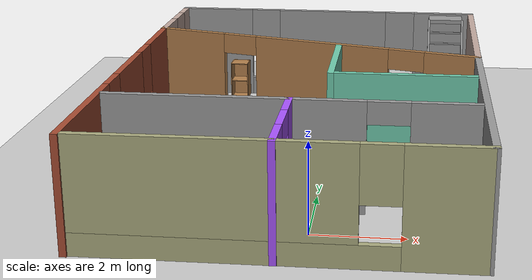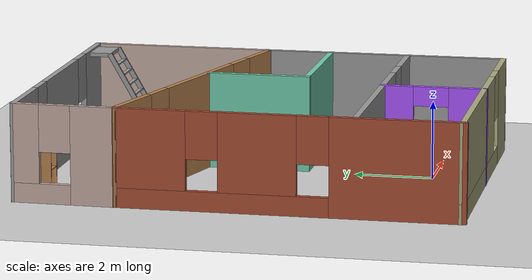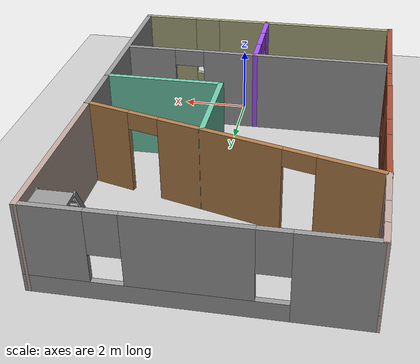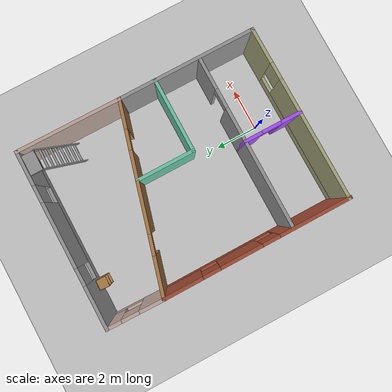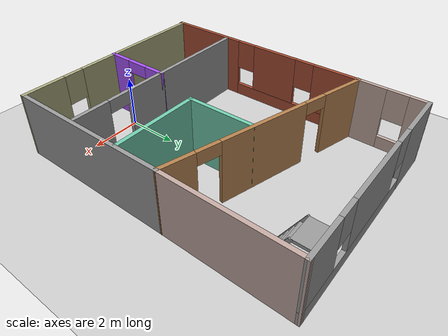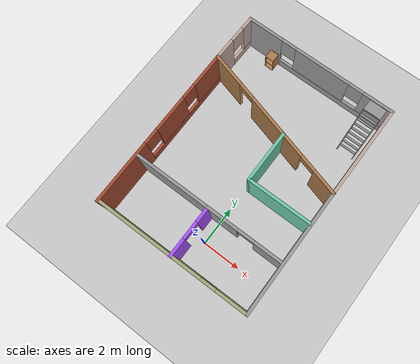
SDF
<sdf version="1.6">
 <world name="default">
  <model name="ground_plane">
   <static>1</static>
   <link name="link">
    <collision name="collision">
     <geometry><plane><normal>0 0 1</normal><size>100 100</size></plane></geometry>
     <surface>
      <contact><collide_bitmask>65535</collide_bitmask></contact>
      <friction><ode><mu>100</mu><mu2>50</mu2></ode></friction>
     </surface>
    </collision>
    <visual name="visual">
     <cast_shadows>0</cast_shadows>
     <geometry><plane><normal>0 0 1</normal><size>100 100</size></plane></geometry>
     <material>
      <script><uri>file://media/materials/scripts/gazebo.material</uri><name>Gazebo/Grey</name></script>
     </material>
    </visual>
   </link>
  </model>
  <model name="smaller_building">
   <pose>-0.52126 4.16067 0 0 -0 0</pose>
   <link name="Wall_0">
    <pose>-4.06474 -1.30067 0 0 -0 1.5708</pose>
    <visual name="Wall_0_Visual_0">
     <pose>-2.69299 0 1.25 0 -0 0</pose>
     <geometry><box><size>3.36402 0.15 2.5</size></box></geometry>
     <material>
      <script><uri>file://media/materials/scripts/gazebo.material</uri><name>Gazebo/Bricks</name></script>
      <ambient>1 1 1 1</ambient>
     </material>
     <meta><layer>0</layer></meta>
    </visual>
    <collision name="Wall_0_Collision_0">
     <geometry><box><size>3.36402 0.15 2.5</size></box></geometry>
     <pose>-2.69299 0 1.25 0 -0 0</pose>
    </collision>
    <visual name="Wall_0_Visual_1">
     <pose>1.68201 0 0.25 0 -0 0</pose>
     <geometry><box><size>5.38598 0.15 0.5</size></box></geometry>
     <material>
      <script><uri>file://media/materials/scripts/gazebo.material</uri><name>Gazebo/Bricks</name></script>
      <ambient>1 1 1 1</ambient>
     </material>
     <meta><layer>0</layer></meta>
    </visual>
    <collision name="Wall_0_Collision_1">
     <geometry><box><size>5.38598 0.15 0.5</size></box></geometry>
     <pose>1.68201 0 0.25 0 -0 0</pose>
    </collision>
    <visual name="Wall_0_Visual_2">
     <pose>0.764423 0 1.5 0 -0 0</pose>
     <geometry><box><size>1.9508 0.15 2</size></box></geometry>
     <material>
      <script><uri>file://media/materials/scripts/gazebo.material</uri><name>Gazebo/Bricks</name></script>
      <ambient>1 1 1 1</ambient>
     </material>
     <meta><layer>0</layer></meta>
    </visual>
    <collision name="Wall_0_Collision_2">
     <geometry><box><size>1.9508 0.15 2</size></box></geometry>
     <pose>0.764423 0 1.5 0 -0 0</pose>
    </collision>
    <visual name="Wall_0_Visual_3">
     <pose>3.45741 0 1.5 0 -0 0</pose>
     <geometry><box><size>1.83518 0.15 2</size></box></geometry>
     <material>
      <script><uri>file://media/materials/scripts/gazebo.material</uri><name>Gazebo/Bricks</name></script>
      <ambient>1 1 1 1</ambient>
     </material>
     <meta><layer>0</layer></meta>
    </visual>
    <collision name="Wall_0_Collision_3">
     <geometry><box><size>1.83518 0.15 2</size></box></geometry>
     <pose>3.45741 0 1.5 0 -0 0</pose>
    </collision>
    <visual name="Wall_0_Visual_4">
     <pose>-0.610977 0 1.9 0 -0 0</pose>
     <geometry><box><size>0.8 0.15 1.2</size></box></geometry>
     <material>
      <script><uri>file://media/materials/scripts/gazebo.material</uri><name>Gazebo/Bricks</name></script>
      <ambient>1 1 1 1</ambient>
     </material>
     <meta><layer>0</layer></meta>
    </visual>
    <collision name="Wall_0_Collision_4">
     <geometry><box><size>0.8 0.15 1.2</size></box></geometry>
     <pose>-0.610977 0 1.9 0 -0 0</pose>
    </collision>
    <visual name="Wall_0_Visual_5">
     <pose>2.13982 0 1.9 0 -0 0</pose>
     <geometry><box><size>0.8 0.15 1.2</size></box></geometry>
     <material>
      <script><uri>file://media/materials/scripts/gazebo.material</uri><name>Gazebo/Bricks</name></script>
      <ambient>1 1 1 1</ambient>
     </material>
     <meta><layer>0</layer></meta>
    </visual>
    <collision name="Wall_0_Collision_5">
     <geometry><box><size>0.8 0.15 1.2</size></box></geometry>
     <pose>2.13982 0 1.9 0 -0 0</pose>
    </collision>
   </link>
   <link name="Wall_1">
    <pose>-0.009001 1.94176 0 0 0 -0.265669</pose>
    <visual name="Wall_1_Visual_0">
     <pose>-3.35201 0 1.25 0 -0 0</pose>
     <geometry><box><size>1.85238 0.15 2.5</size></box></geometry>
     <material>
      <script><uri>file://media/materials/scripts/gazebo.material</uri><name>Gazebo/Wood</name></script>
      <ambient>1 1 1 1</ambient>
     </material>
     <meta><layer>0</layer></meta>
    </visual>
    <collision name="Wall_1_Collision_0">
     <geometry><box><size>1.85238 0.15 2.5</size></box></geometry>
     <pose>-3.35201 0 1.25 0 -0 0</pose>
    </collision>
    <visual name="Wall_1_Visual_1">
     <pose>0.239557 0 1.25 0 -0 0</pose>
     <geometry><box><size>3.53076 0.15 2.5</size></box></geometry>
     <material>
      <script><uri>file://media/materials/scripts/gazebo.material</uri><name>Gazebo/Wood</name></script>
      <ambient>1 1 1 1</ambient>
     </material>
     <meta><layer>0</layer></meta>
    </visual>
    <collision name="Wall_1_Collision_1">
     <geometry><box><size>3.53076 0.15 2.5</size></box></geometry>
     <pose>0.239557 0 1.25 0 -0 0</pose>
    </collision>
    <visual name="Wall_1_Visual_2">
     <pose>3.59157 0 1.25 0 -0 0</pose>
     <geometry><box><size>1.37326 0.15 2.5</size></box></geometry>
     <material>
      <script><uri>file://media/materials/scripts/gazebo.material</uri><name>Gazebo/Wood</name></script>
      <ambient>1 1 1 1</ambient>
     </material>
     <meta><layer>0</layer></meta>
    </visual>
    <collision name="Wall_1_Collision_2">
     <geometry><box><size>1.37326 0.15 2.5</size></box></geometry>
     <pose>3.59157 0 1.25 0 -0 0</pose>
    </collision>
    <visual name="Wall_1_Visual_3">
     <pose>-1.97582 0 2.25 0 -0 0</pose>
     <geometry><box><size>0.9 0.15 0.5</size></box></geometry>
     <material>
      <script><uri>file://media/materials/scripts/gazebo.material</uri><name>Gazebo/Wood</name></script>
      <ambient>1 1 1 1</ambient>
     </material>
     <meta><layer>0</layer></meta>
    </visual>
    <collision name="Wall_1_Collision_3">
     <geometry><box><size>0.9 0.15 0.5</size></box></geometry>
     <pose>-1.97582 0 2.25 0 -0 0</pose>
    </collision>
    <visual name="Wall_1_Visual_4">
     <pose>2.45494 0 2.25 0 -0 0</pose>
     <geometry><box><size>0.9 0.15 0.5</size></box></geometry>
     <material>
      <script><uri>file://media/materials/scripts/gazebo.material</uri><name>Gazebo/Wood</name></script>
      <ambient>1 1 1 1</ambient>
     </material>
     <meta><layer>0</layer></meta>
    </visual>
    <collision name="Wall_1_Collision_4">
     <geometry><box><size>0.9 0.15 0.5</size></box></geometry>
     <pose>2.45494 0 2.25 0 -0 0</pose>
    </collision>
   </link>
   <link name="Wall_10">
    <pose>0.031259 5.59933 0 0 -0 0</pose>
    <visual name="Wall_10_Visual_0">
     <pose>-3.12756 0 1.25 0 -0 0</pose>
     <geometry><box><size>1.99488 0.15 2.5</size></box></geometry>
     <material>
      <script><uri>file://media/materials/scripts/gazebo.material</uri><name>Gazebo/Grey</name></script>
      <ambient>0 0 0 1</ambient>
     </material>
     <meta><layer>0</layer></meta>
    </visual>
    <collision name="Wall_10_Collision_0">
     <geometry><box><size>1.99488 0.15 2.5</size></box></geometry>
     <pose>-3.12756 0 1.25 0 -0 0</pose>
    </collision>
    <visual name="Wall_10_Visual_1">
     <pose>0.997439 0 0.25 0 -0 0</pose>
     <geometry><box><size>6.25512 0.15 0.5</size></box></geometry>
     <material>
      <script><uri>file://media/materials/scripts/gazebo.material</uri><name>Gazebo/Grey</name></script>
      <ambient>0 0 0 1</ambient>
     </material>
     <meta><layer>0</layer></meta>
    </visual>
    <collision name="Wall_10_Collision_1">
     <geometry><box><size>6.25512 0.15 0.5</size></box></geometry>
     <pose>0.997439 0 0.25 0 -0 0</pose>
    </collision>
    <visual name="Wall_10_Visual_2">
     <pose>0.174278 0 1.5 0 -0 0</pose>
     <geometry><box><size>3.0088 0.15 2</size></box></geometry>
     <material>
      <script><uri>file://media/materials/scripts/gazebo.material</uri><name>Gazebo/Grey</name></script>
      <ambient>0 0 0 1</ambient>
     </material>
     <meta><layer>0</layer></meta>
    </visual>
    <collision name="Wall_10_Collision_2">
     <geometry><box><size>3.0088 0.15 2</size></box></geometry>
     <pose>0.174278 0 1.5 0 -0 0</pose>
    </collision>
    <visual name="Wall_10_Visual_3">
     <pose>3.30184 0 1.5 0 -0 0</pose>
     <geometry><box><size>1.64632 0.15 2</size></box></geometry>
     <material>
      <script><uri>file://media/materials/scripts/gazebo.material</uri><name>Gazebo/Grey</name></script>
      <ambient>0 0 0 1</ambient>
     </material>
     <meta><layer>0</layer></meta>
    </visual>
    <collision name="Wall_10_Collision_3">
     <geometry><box><size>1.64632 0.15 2</size></box></geometry>
     <pose>3.30184 0 1.5 0 -0 0</pose>
    </collision>
    <visual name="Wall_10_Visual_4">
     <pose>-1.73012 0 1.9 0 -0 0</pose>
     <geometry><box><size>0.8 0.15 1.2</size></box></geometry>
     <material>
      <script><uri>file://media/materials/scripts/gazebo.material</uri><name>Gazebo/Grey</name></script>
      <ambient>0 0 0 1</ambient>
     </material>
     <meta><layer>0</layer></meta>
    </visual>
    <collision name="Wall_10_Collision_4">
     <geometry><box><size>0.8 0.15 1.2</size></box></geometry>
     <pose>-1.73012 0 1.9 0 -0 0</pose>
    </collision>
    <visual name="Wall_10_Visual_5">
     <pose>2.07868 0 1.9 0 -0 0</pose>
     <geometry><box><size>0.8 0.15 1.2</size></box></geometry>
     <material>
      <script><uri>file://media/materials/scripts/gazebo.material</uri><name>Gazebo/Grey</name></script>
      <ambient>0 0 0 1</ambient>
     </material>
     <meta><layer>0</layer></meta>
    </visual>
    <collision name="Wall_10_Collision_5">
     <geometry><box><size>0.8 0.15 1.2</size></box></geometry>
     <pose>2.07868 0 1.9 0 -0 0</pose>
    </collision>
   </link>
   <link name="Wall_11">
    <collision name="Wall_11_Collision">
     <geometry><box><size>4.91126 0.15 2.5</size></box></geometry>
     <pose>0 0 1.25 0 -0 0</pose>
    </collision>
    <visual name="Wall_11_Visual">
     <pose>0 0 1.25 0 -0 0</pose>
     <geometry><box><size>4.91126 0.15 2.5</size></box></geometry>
     <material>
      <script><uri>file://media/materials/scripts/gazebo.material</uri><name>Gazebo/Grey</name></script>
      <ambient>0.760784 0.662745 0.627451 1</ambient>
     </material>
     <meta><layer>0</layer></meta>
    </visual>
    <pose>4.064 3.21876 0 0 0 -1.57805</pose>
   </link>
   <link name="Wall_13">
    <collision name="Wall_13_Collision">
     <geometry><box><size>2.75 0.15 2.5</size></box></geometry>
     <pose>0 0 1.25 0 -0 0</pose>
    </collision>
    <visual name="Wall_13_Visual">
     <pose>0 0 1.25 0 -0 0</pose>
     <geometry><box><size>2.75 0.15 2.5</size></box></geometry>
     <material>
      <script><uri>file://media/materials/scripts/gazebo.material</uri><name>Gazebo/Grey</name></script>
      <ambient>0.435294 0.796078 0.67451 1</ambient>
     </material>
     <meta><layer>0</layer></meta>
    </visual>
    <pose>0.681637 0.438455 0 0 0 -1.5708</pose>
   </link>
   <link name="Wall_14">
    <collision name="Wall_14_Collision">
     <geometry><box><size>3.5 0.15 2.5</size></box></geometry>
     <pose>0 0 1.25 0 -0 0</pose>
    </collision>
    <visual name="Wall_14_Visual">
     <pose>0 0 1.25 0 -0 0</pose>
     <geometry><box><size>3.5 0.15 2.5</size></box></geometry>
     <material>
      <script><uri>file://media/materials/scripts/gazebo.material</uri><name>Gazebo/Grey</name></script>
      <ambient>0.435294 0.796078 0.67451 1</ambient>
     </material>
     <meta><layer>0</layer></meta>
    </visual>
    <pose>2.35664 -0.861545 0 0 -0 0</pose>
   </link>
   <link name="Wall_2">
    <collision name="Wall_2_Collision">
     <geometry><box><size>6.5 0.15 2.5</size></box></geometry>
     <pose>0 0 1.25 0 -0 0</pose>
    </collision>
    <visual name="Wall_2_Visual">
     <pose>0 0 1.25 0 -0 0</pose>
     <geometry><box><size>6.5 0.15 2.5</size></box></geometry>
     <material>
      <script><uri>file://media/materials/scripts/gazebo.material</uri><name>Gazebo/Grey</name></script>
      <ambient>1 1 1 1</ambient>
     </material>
     <meta><layer>0</layer></meta>
    </visual>
    <pose>4.04674 -2.33681 0 0 0 -1.5708</pose>
   </link>
   <link name="Wall_3">
    <pose>-0.009001 -5.53324 0 0 0 -3.13631</pose>
    <visual name="Wall_3_Visual_0">
     <pose>-3.27202 0 1.25 0 -0 0</pose>
     <geometry><box><size>1.71756 0.15 2.5</size></box></geometry>
     <material>
      <script><uri>file://media/materials/scripts/gazebo.material</uri><name>Gazebo/Grey</name></script>
      <ambient>0.666667 0.666667 0.498039 1</ambient>
     </material>
     <meta><layer>0</layer></meta>
    </visual>
    <collision name="Wall_3_Collision_0">
     <geometry><box><size>1.71756 0.15 2.5</size></box></geometry>
     <pose>-3.27202 0 1.25 0 -0 0</pose>
    </collision>
    <visual name="Wall_3_Visual_1">
     <pose>0.858779 0 0.25 0 -0 0</pose>
     <geometry><box><size>6.54404 0.15 0.5</size></box></geometry>
     <material>
      <script><uri>file://media/materials/scripts/gazebo.material</uri><name>Gazebo/Grey</name></script>
      <ambient>0.666667 0.666667 0.498039 1</ambient>
     </material>
     <meta><layer>0</layer></meta>
    </visual>
    <collision name="Wall_3_Collision_1">
     <geometry><box><size>6.54404 0.15 0.5</size></box></geometry>
     <pose>0.858779 0 0.25 0 -0 0</pose>
    </collision>
    <visual name="Wall_3_Visual_2">
     <pose>1.25878 0 1.5 0 -0 0</pose>
     <geometry><box><size>5.74404 0.15 2</size></box></geometry>
     <material>
      <script><uri>file://media/materials/scripts/gazebo.material</uri><name>Gazebo/Grey</name></script>
      <ambient>0.666667 0.666667 0.498039 1</ambient>
     </material>
     <meta><layer>0</layer></meta>
    </visual>
    <collision name="Wall_3_Collision_2">
     <geometry><box><size>5.74404 0.15 2</size></box></geometry>
     <pose>1.25878 0 1.5 0 -0 0</pose>
    </collision>
    <visual name="Wall_3_Visual_3">
     <pose>-2.01324 0 1.9 0 -0 0</pose>
     <geometry><box><size>0.8 0.15 1.2</size></box></geometry>
     <material>
      <script><uri>file://media/materials/scripts/gazebo.material</uri><name>Gazebo/Grey</name></script>
      <ambient>0.666667 0.666667 0.498039 1</ambient>
     </material>
     <meta><layer>0</layer></meta>
    </visual>
    <collision name="Wall_3_Collision_3">
     <geometry><box><size>0.8 0.15 1.2</size></box></geometry>
     <pose>-2.01324 0 1.9 0 -0 0</pose>
    </collision>
   </link>
   <link name="Wall_5">
    <pose>-0.02138 -2.94564 0 0 -0 0</pose>
    <visual name="Wall_5_Visual_0">
     <pose>-1.18579 0 1.25 0 -0 0</pose>
     <geometry><box><size>5.62842 0.15 2.5</size></box></geometry>
     <material>
      <script><uri>file://media/materials/scripts/gazebo.material</uri><name>Gazebo/Grey</name></script>
      <ambient>1 1 1 1</ambient>
     </material>
     <meta><layer>0</layer></meta>
    </visual>
    <collision name="Wall_5_Collision_0">
     <geometry><box><size>5.62842 0.15 2.5</size></box></geometry>
     <pose>-1.18579 0 1.25 0 -0 0</pose>
    </collision>
    <visual name="Wall_5_Visual_1">
     <pose>3.26421 0 1.25 0 -0 0</pose>
     <geometry><box><size>1.47158 0.15 2.5</size></box></geometry>
     <material>
      <script><uri>file://media/materials/scripts/gazebo.material</uri><name>Gazebo/Grey</name></script>
      <ambient>1 1 1 1</ambient>
     </material>
     <meta><layer>0</layer></meta>
    </visual>
    <collision name="Wall_5_Collision_1">
     <geometry><box><size>1.47158 0.15 2.5</size></box></geometry>
     <pose>3.26421 0 1.25 0 -0 0</pose>
    </collision>
    <visual name="Wall_5_Visual_2">
     <pose>2.07842 0 2.25 0 -0 0</pose>
     <geometry><box><size>0.9 0.15 0.5</size></box></geometry>
     <material>
      <script><uri>file://media/materials/scripts/gazebo.material</uri><name>Gazebo/Grey</name></script>
      <ambient>1 1 1 1</ambient>
     </material>
     <meta><layer>0</layer></meta>
    </visual>
    <collision name="Wall_5_Collision_2">
     <geometry><box><size>0.9 0.15 0.5</size></box></geometry>
     <pose>2.07842 0 2.25 0 -0 0</pose>
    </collision>
   </link>
   <link name="Wall_7">
    <pose>-0.00412 -4.24564 0 0 0 -1.5708</pose>
    <visual name="Wall_7_Visual_0">
     <pose>-0.942147 0 1.25 0 -0 0</pose>
     <geometry><box><size>0.865707 0.15 2.5</size></box></geometry>
     <material>
      <script><uri>file://media/materials/scripts/gazebo.material</uri><name>Gazebo/Grey</name></script>
      <ambient>0.666667 0.333333 1 1</ambient>
     </material>
     <meta><layer>0</layer></meta>
    </visual>
    <collision name="Wall_7_Collision_0">
     <geometry><box><size>0.865707 0.15 2.5</size></box></geometry>
     <pose>-0.942147 0 1.25 0 -0 0</pose>
    </collision>
    <visual name="Wall_7_Visual_1">
     <pose>0.882853 0 1.25 0 -0 0</pose>
     <geometry><box><size>0.984293 0.15 2.5</size></box></geometry>
     <material>
      <script><uri>file://media/materials/scripts/gazebo.material</uri><name>Gazebo/Grey</name></script>
      <ambient>0.666667 0.333333 1 1</ambient>
     </material>
     <meta><layer>0</layer></meta>
    </visual>
    <collision name="Wall_7_Collision_1">
     <geometry><box><size>0.984293 0.15 2.5</size></box></geometry>
     <pose>0.882853 0 1.25 0 -0 0</pose>
    </collision>
    <visual name="Wall_7_Visual_2">
     <pose>-0.059293 0 2.25 0 -0 0</pose>
     <geometry><box><size>0.9 0.15 0.5</size></box></geometry>
     <material>
      <script><uri>file://media/materials/scripts/gazebo.material</uri><name>Gazebo/Grey</name></script>
      <ambient>0.666667 0.333333 1 1</ambient>
     </material>
     <meta><layer>0</layer></meta>
    </visual>
    <collision name="Wall_7_Collision_2">
     <geometry><box><size>0.9 0.15 0.5</size></box></geometry>
     <pose>-0.059293 0 2.25 0 -0 0</pose>
    </collision>
   </link>
   <link name="Wall_9">
    <pose>-4.04174 4.32233 0 0 -0 1.55279</pose>
    <visual name="Wall_9_Visual_0">
     <pose>-0.766072 0 1.25 0 -0 0</pose>
     <geometry><box><size>1.17227 0.15 2.5</size></box></geometry>
     <material>
      <script><uri>file://media/materials/scripts/gazebo.material</uri><name>Gazebo/Grey</name></script>
      <ambient>0.760784 0.662745 0.627451 1</ambient>
     </material>
     <meta><layer>0</layer></meta>
    </visual>
    <collision name="Wall_9_Collision_0">
     <geometry><box><size>1.17227 0.15 2.5</size></box></geometry>
     <pose>-0.766072 0 1.25 0 -0 0</pose>
    </collision>
    <visual name="Wall_9_Visual_1">
     <pose>0.586135 0 0.25 0 -0 0</pose>
     <geometry><box><size>1.53214 0.15 0.5</size></box></geometry>
     <material>
      <script><uri>file://media/materials/scripts/gazebo.material</uri><name>Gazebo/Grey</name></script>
      <ambient>0.760784 0.662745 0.627451 1</ambient>
     </material>
     <meta><layer>0</layer></meta>
    </visual>
    <collision name="Wall_9_Collision_1">
     <geometry><box><size>1.53214 0.15 0.5</size></box></geometry>
     <pose>0.586135 0 0.25 0 -0 0</pose>
    </collision>
    <visual name="Wall_9_Visual_2">
     <pose>0.986135 0 1.5 0 -0 0</pose>
     <geometry><box><size>0.732144 0.15 2</size></box></geometry>
     <material>
      <script><uri>file://media/materials/scripts/gazebo.material</uri><name>Gazebo/Grey</name></script>
      <ambient>0.760784 0.662745 0.627451 1</ambient>
     </material>
     <meta><layer>0</layer></meta>
    </visual>
    <collision name="Wall_9_Collision_2">
     <geometry><box><size>0.732144 0.15 2</size></box></geometry>
     <pose>0.986135 0 1.5 0 -0 0</pose>
    </collision>
    <visual name="Wall_9_Visual_3">
     <pose>0.220063 0 1.9 0 -0 0</pose>
     <geometry><box><size>0.8 0.15 1.2</size></box></geometry>
     <material>
      <script><uri>file://media/materials/scripts/gazebo.material</uri><name>Gazebo/Grey</name></script>
      <ambient>0.760784 0.662745 0.627451 1</ambient>
     </material>
     <meta><layer>0</layer></meta>
    </visual>
    <collision name="Wall_9_Collision_3">
     <geometry><box><size>0.8 0.15 1.2</size></box></geometry>
     <pose>0.220063 0 1.9 0 -0 0</pose>
    </collision>
   </link>
   <static>1</static>
  </model>
  <model name="cabinet">
   <static>1</static>
   <link name="cabinet_bottom_plate">
    <inertial>
     <pose>0 0 -1 0 -0 0</pose>
     <inertia><ixx>2.05</ixx><ixy>0</ixy><ixz>0</ixz><iyy>2.05</iyy><iyz>0</iyz><izz>2.05</izz></inertia>
     <mass>25</mass>
    </inertial>
    <collision name="cabinet_bottom_plate_geom">
     <pose>0 0 0.01 0 -0 0</pose>
     <geometry><box><size>0.45 0.45 0.02</size></box></geometry>
    </collision>
    <visual name="cabinet_bottom_plate_geom_visual">
     <pose>0 0 0.01 0 -0 0</pose>
     <geometry><box><size>0.45 0.45 0.02</size></box></geometry>
     <material>
      <script><uri>file://media/materials/scripts/gazebo.material</uri><name>Gazebo/Wood</name></script>
     </material>
    </visual>
    <collision name="cabinet_bottom_plate_geom_cabinet_back_plate">
     <pose>0.235 0 0.51 0 -0 0</pose>
     <geometry><box><size>0.02 0.45 1.02</size></box></geometry>
    </collision>
    <visual name="cabinet_bottom_plate_geom_cabinet_back_plate_visual">
     <pose>0.235 0 0.51 0 -0 0</pose>
     <geometry><box><size>0.02 0.45 1.02</size></box></geometry>
     <material>
      <script><uri>file://media/materials/scripts/gazebo.material</uri><name>Gazebo/Wood</name></script>
     </material>
    </visual>
    <collision name="cabinet_bottom_plate_geom_cabinet_left_plate">
     <pose>0 0.235 0.51 0 -0 0</pose>
     <geometry><box><size>0.45 0.02 1.02</size></box></geometry>
    </collision>
    <visual name="cabinet_bottom_plate_geom_cabinet_left_plate_visual">
     <pose>0 0.235 0.51 0 -0 0</pose>
     <geometry><box><size>0.45 0.02 1.02</size></box></geometry>
     <material>
      <script><uri>file://media/materials/scripts/gazebo.material</uri><name>Gazebo/Wood</name></script>
     </material>
    </visual>
    <collision name="cabinet_bottom_plate_geom_cabinet_middle_plate">
     <pose>0 0 0.51 0 -0 0</pose>
     <geometry><box><size>0.45 0.45 0.02</size></box></geometry>
    </collision>
    <visual name="cabinet_bottom_plate_geom_cabinet_middle_plate_visual">
     <pose>0 0 0.51 0 -0 0</pose>
     <geometry><box><size>0.45 0.45 0.02</size></box></geometry>
     <material>
      <script><uri>file://media/materials/scripts/gazebo.material</uri><name>Gazebo/Wood</name></script>
     </material>
    </visual>
    <collision name="cabinet_bottom_plate_geom_cabinet_right_plate">
     <pose>0 -0.235 0.51 0 -0 0</pose>
     <geometry><box><size>0.45 0.02 1.02</size></box></geometry>
    </collision>
    <visual name="cabinet_bottom_plate_geom_cabinet_right_plate_visual">
     <pose>0 -0.235 0.51 0 -0 0</pose>
     <geometry><box><size>0.45 0.02 1.02</size></box></geometry>
     <material>
      <script><uri>file://media/materials/scripts/gazebo.material</uri><name>Gazebo/Wood</name></script>
     </material>
    </visual>
    <collision name="cabinet_bottom_plate_geom_cabinet_top_plate">
     <pose>0 0 1.01 0 -0 0</pose>
     <geometry><box><size>0.45 0.45 0.02</size></box></geometry>
    </collision>
    <visual name="cabinet_bottom_plate_geom_cabinet_top_plate_visual">
     <pose>0 0 1.01 0 -0 0</pose>
     <geometry><box><size>0.45 0.45 0.02</size></box></geometry>
     <material>
      <script><uri>file://media/materials/scripts/gazebo.material</uri><name>Gazebo/Wood</name></script>
     </material>
    </visual>
   </link>
   <pose>-2.94345 9.42857 0 0 -0 1.55102</pose>
  </model>
  <model name="ladder_60deg_0rails">
   <static>1</static>
   <link name="step0">
    <pose>0 0.15396 0.266667 0 -0 0</pose>
    <inertial>
     <mass>9.75482</mass>
     <inertia>
      <ixx>0.00957124</ixx>
      <iyy>0.65963</iyy>
      <izz>0.666842</izz>
      <ixy>0</ixy>
      <ixz>0</ixz>
      <iyz>0</iyz>
     </inertia>
    </inertial>
    <collision name="collision"><geometry><box><size>0.9 0.1016 0.0381</size></box></geometry></collision>
    <visual name="visual">
     <geometry><box><size>0.9 0.1016 0.0381</size></box></geometry>
     <material>
      <script><uri>file://media/materials/scripts/gazebo.material</uri><name>Gazebo/Grey</name></script>
     </material>
    </visual>
   </link>
   <link name="step1">
    <pose>0 0.30792 0.533333 0 -0 0</pose>
    <inertial>
     <mass>9.75482</mass>
     <inertia>
      <ixx>0.00957124</ixx>
      <iyy>0.65963</iyy>
      <izz>0.666842</izz>
      <ixy>0</ixy>
      <ixz>0</ixz>
      <iyz>0</iyz>
     </inertia>
    </inertial>
    <collision name="collision"><geometry><box><size>0.9 0.1016 0.0381</size></box></geometry></collision>
    <visual name="visual">
     <geometry><box><size>0.9 0.1016 0.0381</size></box></geometry>
     <material>
      <script><uri>file://media/materials/scripts/gazebo.material</uri><name>Gazebo/Grey</name></script>
     </material>
    </visual>
   </link>
   <link name="step2">
    <pose>0 0.46188 0.8 0 -0 0</pose>
    <inertial>
     <mass>9.75482</mass>
     <inertia>
      <ixx>0.00957124</ixx>
      <iyy>0.65963</iyy>
      <izz>0.666842</izz>
      <ixy>0</ixy>
      <ixz>0</ixz>
      <iyz>0</iyz>
     </inertia>
    </inertial>
    <collision name="collision"><geometry><box><size>0.9 0.1016 0.0381</size></box></geometry></collision>
    <visual name="visual">
     <geometry><box><size>0.9 0.1016 0.0381</size></box></geometry>
     <material>
      <script><uri>file://media/materials/scripts/gazebo.material</uri><name>Gazebo/Grey</name></script>
     </material>
    </visual>
   </link>
   <link name="step3">
    <pose>0 0.61584 1.06667 0 -0 0</pose>
    <inertial>
     <mass>9.75482</mass>
     <inertia>
      <ixx>0.00957124</ixx>
      <iyy>0.65963</iyy>
      <izz>0.666842</izz>
      <ixy>0</ixy>
      <ixz>0</ixz>
      <iyz>0</iyz>
     </inertia>
    </inertial>
    <collision name="collision"><geometry><box><size>0.9 0.1016 0.0381</size></box></geometry></collision>
    <visual name="visual">
     <geometry><box><size>0.9 0.1016 0.0381</size></box></geometry>
     <material>
      <script><uri>file://media/materials/scripts/gazebo.material</uri><name>Gazebo/Grey</name></script>
     </material>
    </visual>
   </link>
   <link name="step4">
    <pose>0 0.7698 1.33333 0 -0 0</pose>
    <inertial>
     <mass>9.75482</mass>
     <inertia>
      <ixx>0.00957124</ixx>
      <iyy>0.65963</iyy>
      <izz>0.666842</izz>
      <ixy>0</ixy>
      <ixz>0</ixz>
      <iyz>0</iyz>
     </inertia>
    </inertial>
    <collision name="collision"><geometry><box><size>0.9 0.1016 0.0381</size></box></geometry></collision>
    <visual name="visual">
     <geometry><box><size>0.9 0.1016 0.0381</size></box></geometry>
     <material>
      <script><uri>file://media/materials/scripts/gazebo.material</uri><name>Gazebo/Grey</name></script>
     </material>
    </visual>
   </link>
   <link name="step5">
    <pose>0 0.92376 1.6 0 -0 0</pose>
    <inertial>
     <mass>9.75482</mass>
     <inertia>
      <ixx>0.00957124</ixx>
      <iyy>0.65963</iyy>
      <izz>0.666842</izz>
      <ixy>0</ixy>
      <ixz>0</ixz>
      <iyz>0</iyz>
     </inertia>
    </inertial>
    <collision name="collision"><geometry><box><size>0.9 0.1016 0.0381</size></box></geometry></collision>
    <visual name="visual">
     <geometry><box><size>0.9 0.1016 0.0381</size></box></geometry>
     <material>
      <script><uri>file://media/materials/scripts/gazebo.material</uri><name>Gazebo/Grey</name></script>
     </material>
    </visual>
   </link>
   <link name="step6">
    <pose>0 1.07772 1.86667 0 -0 0</pose>
    <inertial>
     <mass>9.75482</mass>
     <inertia>
      <ixx>0.00957124</ixx>
      <iyy>0.65963</iyy>
      <izz>0.666842</izz>
      <ixy>0</ixy>
      <ixz>0</ixz>
      <iyz>0</iyz>
     </inertia>
    </inertial>
    <collision name="collision"><geometry><box><size>0.9 0.1016 0.0381</size></box></geometry></collision>
    <visual name="visual">
     <geometry><box><size>0.9 0.1016 0.0381</size></box></geometry>
     <material>
      <script><uri>file://media/materials/scripts/gazebo.material</uri><name>Gazebo/Grey</name></script>
     </material>
    </visual>
   </link>
   <link name="step7">
    <pose>0 1.23168 2.13333 0 -0 0</pose>
    <inertial>
     <mass>9.75482</mass>
     <inertia>
      <ixx>0.00957124</ixx>
      <iyy>0.65963</iyy>
      <izz>0.666842</izz>
      <ixy>0</ixy>
      <ixz>0</ixz>
      <iyz>0</iyz>
     </inertia>
    </inertial>
    <collision name="collision"><geometry><box><size>0.9 0.1016 0.0381</size></box></geometry></collision>
    <visual name="visual">
     <geometry><box><size>0.9 0.1016 0.0381</size></box></geometry>
     <material>
      <script><uri>file://media/materials/scripts/gazebo.material</uri><name>Gazebo/Grey</name></script>
     </material>
    </visual>
   </link>
   <link name="landing">
    <pose>0 1.68564 2.4 0 -0 0</pose>
    <inertial>
     <mass>57.6072</mass>
     <inertia><ixx>1.73518</ixx><iyy>3.89545</iyy><izz>5.6167</izz><ixy>0</ixy><ixz>0</ixz><iyz>0</iyz></inertia>
    </inertial>
    <collision name="collision"><geometry><box><size>0.9 0.6 0.1016</size></box></geometry></collision>
    <visual name="visual">
     <geometry><box><size>0.9 0.6 0.1016</size></box></geometry>
     <material>
      <script><uri>file://media/materials/scripts/gazebo.material</uri><name>Gazebo/Grey</name></script>
     </material>
    </visual>
   </link>
   <link name="left_side_wall">
    <pose>-0.45 0.69282 1.2 1.0472 -0 0</pose>
    <collision name="collision"><geometry><box><size>0.0508 2.85128 0.13</size></box></geometry></collision>
    <visual name="visual">
     <geometry><box><size>0.0508 2.85128 0.13</size></box></geometry>
     <material>
      <script><uri>file://media/materials/scripts/gazebo.material</uri><name>Gazebo/Grey</name></script>
     </material>
    </visual>
   </link>
   <link name="right_side_wall">
    <pose>0.45 0.69282 1.2 1.0472 -0 0</pose>
    <collision name="collision"><geometry><box><size>0.0508 2.85128 0.13</size></box></geometry></collision>
    <visual name="visual">
     <geometry><box><size>0.0508 2.85128 0.13</size></box></geometry>
     <material>
      <script><uri>file://media/materials/scripts/gazebo.material</uri><name>Gazebo/Grey</name></script>
     </material>
    </visual>
   </link>
   <pose>2.85948 7.73214 0 0 -0 0</pose>
  </model>
 </world>
</sdf>
